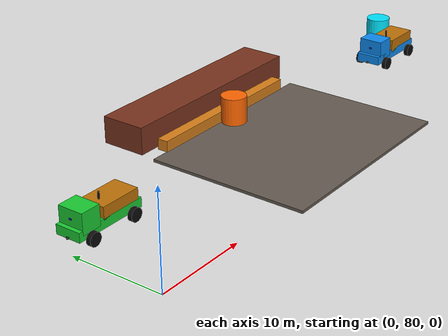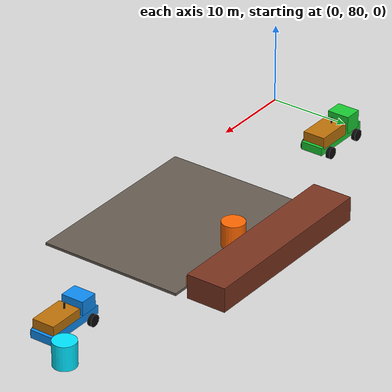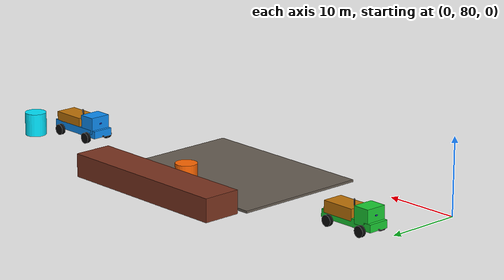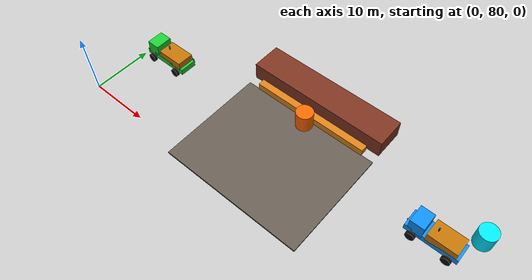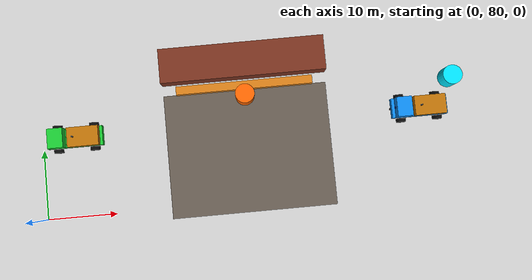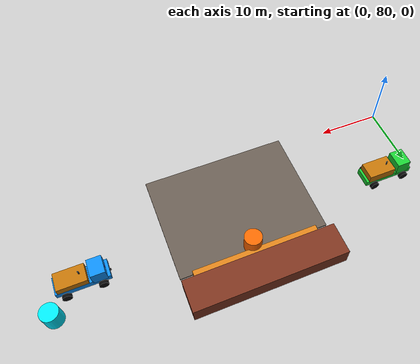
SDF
<sdf version="1.9">
 <world name="sih_mine_world">
  <model name="Dumping_Zone_Pad">
   <static>true</static>
   <pose>30 87.5 -0.15 0 0 0</pose>
   <link name="link">
    <collision name="collision">
     <geometry><box><size>24 18.0 0.3</size></box></geometry>
     <surface><friction><ode><mu>1.0</mu><mu2>0.9</mu2></ode></friction></surface>
    </collision>
    <visual name="visual">
     <geometry><box><size>24 18.0 0.3</size></box></geometry>
     <material><ambient>0.40 0.36 0.32 1</ambient><diffuse>0.40 0.36 0.32 1</diffuse></material>
    </visual>
   </link>
  </model>
  <model name="Dumping_Zone_Stop_Berm">
   <static>true</static>
   <pose>30.0 97.0 0.6 0 0 0</pose>
   <link name="link">
    <collision name="collision">
     <geometry><box><size>20.0 1.2 1.2</size></box></geometry>
     <surface><friction><ode><mu>0.9</mu><mu2>0.9</mu2></ode></friction></surface>
    </collision>
    <visual name="visual">
     <geometry><box><size>20.0 1.2 1.2</size></box></geometry>
     <material><ambient>0.85 0.50 0.10 1</ambient><diffuse>0.85 0.50 0.10 1</diffuse></material>
    </visual>
   </link>
  </model>
  <model name="Dumping_Zone_Stockpile">
   <static>true</static>
   <pose>30.0 100.5 1.5 0 0 0</pose>
   <link name="link">
    <collision name="collision">
     <geometry><box><size>24.0 5.0 3.0</size></box></geometry>
     <surface><friction><ode><mu>0.9</mu><mu2>0.9</mu2></ode></friction></surface>
    </collision>
    <visual name="visual">
     <geometry><box><size>24.0 5.0 3.0</size></box></geometry>
     <material><ambient>0.48 0.20 0.12 1</ambient><diffuse>0.48 0.20 0.12 1</diffuse></material>
    </visual>
   </link>
  </model>
  <model name="Spawn_Marker_02">
   <static>true</static>
   <pose>60 95.5 1.5 0 0 0</pose>
   <link name="link">
    <visual name="visual">
     <geometry><cylinder><radius>1.4</radius><length>3.0</length></cylinder></geometry>
     <material><ambient>0.0 0.9 1.0 1</ambient><diffuse>0.0 0.9 1.0 1</diffuse></material>
    </visual>
   </link>
  </model>
  <model name="Dumping_Zone_Marker">
   <static>true</static>
   <pose>30 95.5 1.5 0 0 0</pose>
   <link name="link">
    <visual name="visual">
     <geometry><cylinder><radius>1.4</radius><length>3.0</length></cylinder></geometry>
     <material><ambient>1.0 0.4 0.0 1</ambient><diffuse>1.0 0.4 0.0 1</diffuse></material>
    </visual>
   </link>
  </model>
  <model name="HEMM_Dumper_02">
   <pose>55 91.5 0 0 0 3.141592653589793</pose>
   <link name="chassis">
    <pose>0 0 1.25 0 0 0</pose>
    <inertial>
     <mass>9000</mass>
     <inertia><ixx>6630</ixx><iyy>48750</iyy><izz>53880</izz><ixy>0</ixy><ixz>0</ixz><iyz>0</iyz></inertia>
    </inertial>
    <collision name="collision">
     <geometry><box><size>8.0 2.8 1.0</size></box></geometry>
     <surface><friction><ode><mu>0.8</mu><mu2>0.05</mu2></ode></friction></surface>
    </collision>
    <visual name="visual">
     <geometry><box><size>8.0 2.8 1.0</size></box></geometry>
     <material><ambient>0.05 0.55 0.95 1</ambient><diffuse>0.05 0.55 0.95 1</diffuse></material>
    </visual>
    <sensor name="imu" type="imu">
     <always_on>1</always_on>
     <update_rate>50</update_rate>
     <visualize>false</visualize>
     <topic>/hemm_02/imu</topic>
    </sensor>
    <sensor name="gps" type="navsat">
     <always_on>1</always_on>
     <update_rate>5</update_rate>
     <topic>/hemm_02/gps</topic>
    </sensor>
   </link>
   <link name="front_body">
    <pose>2.45 0 2.35 0 0 0</pose>
    <inertial>
     <mass>1800</mass>
     <inertia><ixx>1902</ixx><iyy>1452</iyy><izz>1902</izz><ixy>0</ixy><ixz>0</ixz><iyz>0</iyz></inertia>
    </inertial>
    <collision name="collision"><geometry><box><size>2.2 2.8 2.2</size></box></geometry></collision>
    <visual name="visual">
     <geometry><box><size>2.2 2.8 2.2</size></box></geometry>
     <material><ambient>0.05 0.55 0.95 1</ambient><diffuse>0.05 0.55 0.95 1</diffuse></material>
    </visual>
   </link>
   <link name="dump_bed">
    <pose>-1.35 0 2.15 0 0 0</pose>
    <inertial>
     <mass>1400</mass>
     <inertia><ixx>1177</ixx><iyy>2625</iyy><izz>3277</izz><ixy>0</ixy><ixz>0</ixz><iyz>0</iyz></inertia>
    </inertial>
    <collision name="collision"><geometry><box><size>4.5 2.8 1.5</size></box></geometry></collision>
    <visual name="visual">
     <geometry><box><size>4.5 2.8 1.5</size></box></geometry>
     <material><ambient>0.75 0.45 0.03 1</ambient><diffuse>0.75 0.45 0.03 1</diffuse></material>
    </visual>
   </link>
   <link name="sensor_mast">
    <pose>0 0 3.15 0 0 0</pose>
    <inertial>
     <mass>80</mass>
     <inertia><ixx>20</ixx><iyy>20</iyy><izz>20</izz><ixy>0</ixy><ixz>0</ixz><iyz>0</iyz></inertia>
    </inertial>
    <visual name="visual">
     <geometry><cylinder><radius>0.10</radius><length>1.0</length></cylinder></geometry>
     <material><ambient>0.05 0.05 0.05 1</ambient><diffuse>0.05 0.05 0.05 1</diffuse></material>
    </visual>
   </link>
   <link name="left_front_wheel">
    <pose>2.65 1.75 0.70 1.5707963 0 0</pose>
    <inertial>
     <mass>450</mass>
     <inertia><ixx>65</ixx><iyy>65</iyy><izz>110</izz><ixy>0</ixy><ixz>0</ixz><iyz>0</iyz></inertia>
    </inertial>
    <collision name="collision">
     <geometry><cylinder><radius>0.70</radius><length>0.50</length></cylinder></geometry>
     <surface>
      <friction><ode><mu>1.5</mu><mu2>0.05</mu2><fdir1>1 0 0</fdir1></ode></friction>
      <contact><ode><kp>1000000</kp><kd>100</kd><min_depth>0.001</min_depth></ode></contact>
     </surface>
    </collision>
    <visual name="visual">
     <geometry><cylinder><radius>0.70</radius><length>0.50</length></cylinder></geometry>
     <material><ambient>0.04 0.04 0.04 1</ambient><diffuse>0.04 0.04 0.04 1</diffuse></material>
    </visual>
   </link>
   <link name="right_front_wheel">
    <pose>2.65 -1.75 0.70 1.5707963 0 0</pose>
    <inertial>
     <mass>450</mass>
     <inertia><ixx>65</ixx><iyy>65</iyy><izz>110</izz><ixy>0</ixy><ixz>0</ixz><iyz>0</iyz></inertia>
    </inertial>
    <collision name="collision">
     <geometry><cylinder><radius>0.70</radius><length>0.50</length></cylinder></geometry>
     <surface>
      <friction><ode><mu>1.5</mu><mu2>0.05</mu2><fdir1>1 0 0</fdir1></ode></friction>
      <contact><ode><kp>1000000</kp><kd>100</kd><min_depth>0.001</min_depth></ode></contact>
     </surface>
    </collision>
    <visual name="visual">
     <geometry><cylinder><radius>0.70</radius><length>0.50</length></cylinder></geometry>
     <material><ambient>0.04 0.04 0.04 1</ambient><diffuse>0.04 0.04 0.04 1</diffuse></material>
    </visual>
   </link>
   <link name="left_rear_wheel">
    <pose>-2.65 1.75 0.70 1.5707963 0 0</pose>
    <inertial>
     <mass>500</mass>
     <inertia><ixx>72</ixx><iyy>72</iyy><izz>122</izz><ixy>0</ixy><ixz>0</ixz><iyz>0</iyz></inertia>
    </inertial>
    <collision name="collision">
     <geometry><cylinder><radius>0.70</radius><length>0.50</length></cylinder></geometry>
     <surface>
      <friction><ode><mu>1.5</mu><mu2>0.05</mu2><fdir1>1 0 0</fdir1></ode></friction>
      <contact><ode><kp>1000000</kp><kd>100</kd><min_depth>0.001</min_depth></ode></contact>
     </surface>
    </collision>
    <visual name="visual">
     <geometry><cylinder><radius>0.70</radius><length>0.50</length></cylinder></geometry>
     <material><ambient>0.04 0.04 0.04 1</ambient><diffuse>0.04 0.04 0.04 1</diffuse></material>
    </visual>
   </link>
   <link name="right_rear_wheel">
    <pose>-2.65 -1.75 0.70 1.5707963 0 0</pose>
    <inertial>
     <mass>500</mass>
     <inertia><ixx>72</ixx><iyy>72</iyy><izz>122</izz><ixy>0</ixy><ixz>0</ixz><iyz>0</iyz></inertia>
    </inertial>
    <collision name="collision">
     <geometry><cylinder><radius>0.70</radius><length>0.50</length></cylinder></geometry>
     <surface>
      <friction><ode><mu>1.5</mu><mu2>0.05</mu2><fdir1>1 0 0</fdir1></ode></friction>
      <contact><ode><kp>1000000</kp><kd>100</kd><min_depth>0.001</min_depth></ode></contact>
     </surface>
    </collision>
    <visual name="visual">
     <geometry><cylinder><radius>0.70</radius><length>0.50</length></cylinder></geometry>
     <material><ambient>0.04 0.04 0.04 1</ambient><diffuse>0.04 0.04 0.04 1</diffuse></material>
    </visual>
   </link>
   <joint name="front_left_wheel_joint" type="revolute">
    <parent>chassis</parent>
    <child>left_front_wheel</child>
    <axis>
     <xyz expressed_in="__model__">0 1 0</xyz>
     <limit><lower>-1e16</lower><upper>1e16</upper><effort>30000</effort><velocity>20</velocity></limit>
     <dynamics><damping>50</damping><friction>1.0</friction></dynamics>
    </axis>
   </joint>
   <joint name="front_right_wheel_joint" type="revolute">
    <parent>chassis</parent>
    <child>right_front_wheel</child>
    <axis>
     <xyz expressed_in="__model__">0 1 0</xyz>
     <limit><lower>-1e16</lower><upper>1e16</upper><effort>30000</effort><velocity>20</velocity></limit>
     <dynamics><damping>50</damping><friction>1.0</friction></dynamics>
    </axis>
   </joint>
   <joint name="rear_left_wheel_joint" type="revolute">
    <parent>chassis</parent>
    <child>left_rear_wheel</child>
    <axis>
     <xyz expressed_in="__model__">0 1 0</xyz>
     <limit><lower>-1e16</lower><upper>1e16</upper><effort>30000</effort><velocity>20</velocity></limit>
     <dynamics><damping>50</damping><friction>1.0</friction></dynamics>
    </axis>
   </joint>
   <joint name="rear_right_wheel_joint" type="revolute">
    <parent>chassis</parent>
    <child>right_rear_wheel</child>
    <axis>
     <xyz expressed_in="__model__">0 1 0</xyz>
     <limit><lower>-1e16</lower><upper>1e16</upper><effort>30000</effort><velocity>20</velocity></limit>
     <dynamics><damping>50</damping><friction>1.0</friction></dynamics>
    </axis>
   </joint>
   <joint name="front_body_joint" type="fixed"><parent>chassis</parent><child>front_body</child></joint>
   <joint name="dump_bed_joint" type="fixed"><parent>chassis</parent><child>dump_bed</child></joint>
   <joint name="sensor_mast_joint" type="fixed"><parent>chassis</parent><child>sensor_mast</child></joint>
   <plugin filename="gz-sim-diff-drive-system" name="gz::sim::systems::DiffDrive">
    <left_joint>front_left_wheel_joint</left_joint>
    <left_joint>rear_left_wheel_joint</left_joint>
    <right_joint>front_right_wheel_joint</right_joint>
    <right_joint>rear_right_wheel_joint</right_joint>
    <wheel_separation>3.50</wheel_separation>
    <wheel_radius>0.70</wheel_radius>
    <topic>/hemm_02/cmd_vel</topic>
    <odom_topic>/hemm_02/odom</odom_topic>
    <frame_id>hemm_02/odom</frame_id>
    <child_frame_id>hemm_02/base_link</child_frame_id>
    <odom_publish_frequency>30</odom_publish_frequency>
    <max_linear_acceleration>2.0</max_linear_acceleration>
    <min_linear_acceleration>-2.0</min_linear_acceleration>
    <max_angular_acceleration>1.5</max_angular_acceleration>
    <min_angular_acceleration>-1.5</min_angular_acceleration>
   </plugin>
   <link name="lidar_link">
    <pose>4.05 0 0.85 0 0 0</pose>
    <inertial>
     <mass>1.0</mass>
     <inertia><ixx>0.001</ixx><iyy>0.001</iyy><izz>0.001</izz><ixy>0</ixy><ixz>0</ixz><iyz>0</iyz></inertia>
    </inertial>
    <visual name="visual">
     <geometry><cylinder><radius>0.15</radius><length>0.15</length></cylinder></geometry>
     <material><ambient>0.1 0.1 0.1 1</ambient><diffuse>0.1 0.1 0.1 1</diffuse></material>
    </visual>
    <sensor name="lidar" type="gpu_lidar">
     <topic>/hemm_02/scan</topic>
     <update_rate>10</update_rate>
     <ray>
      <scan>
       <horizontal>
        <samples>360</samples>
        <resolution>1</resolution>
        <min_angle>-3.14159265</min_angle>
        <max_angle>3.14159265</max_angle>
       </horizontal>
      </scan>
      <range><min>0.1</min><max>50.0</max><resolution>0.05</resolution></range>
     </ray>
     <always_on>true</always_on>
     <visualize>false</visualize>
    </sensor>
   </link>
   <joint name="lidar_joint" type="fixed"><parent>chassis</parent><child>lidar_link</child></joint>
   <link name="camera_link">
    <pose>3.55 0 2.5 0 0 0</pose>
    <inertial>
     <mass>0.5</mass>
     <inertia><ixx>0.0005</ixx><iyy>0.0005</iyy><izz>0.0005</izz><ixy>0</ixy><ixz>0</ixz><iyz>0</iyz></inertia>
    </inertial>
    <visual name="visual">
     <geometry><box><size>0.15 0.30 0.15</size></box></geometry>
     <material><ambient>0.2 0.2 0.8 1</ambient><diffuse>0.2 0.2 0.8 1</diffuse></material>
    </visual>
    <sensor name="camera" type="camera">
     <topic>/hemm_02/camera/image_raw</topic>
     <update_rate>15</update_rate>
     <camera>
      <horizontal_fov>1.570796</horizontal_fov>
      <image><width>640</width><height>480</height><format>R8G8B8</format></image>
      <clip><near>0.2</near><far>100.0</far></clip>
     </camera>
     <always_on>1</always_on>
     <visualize>false</visualize>
    </sensor>
    <sensor name="depth_camera" type="depth_camera">
     <topic>/hemm_02/depth/image_raw</topic>
     <update_rate>10</update_rate>
     <camera>
      <horizontal_fov>1.396263</horizontal_fov>
      <image><width>320</width><height>240</height><format>R_FLOAT32</format></image>
      <clip><near>0.5</near><far>50.0</far></clip>
     </camera>
     <always_on>1</always_on>
     <visualize>false</visualize>
    </sensor>
   </link>
   <joint name="camera_joint" type="fixed"><parent>chassis</parent><child>camera_link</child></joint>
  </model>
  <model name="HEMM_Dumper_03">
   <pose>5 91.5 0 0 0 3.141592653589793</pose>
   <link name="chassis">
    <pose>0 0 1.25 0 0 0</pose>
    <inertial>
     <mass>9000</mass>
     <inertia><ixx>6630</ixx><iyy>48750</iyy><izz>53880</izz><ixy>0</ixy><ixz>0</ixz><iyz>0</iyz></inertia>
    </inertial>
    <collision name="collision">
     <geometry><box><size>8.0 2.8 1.0</size></box></geometry>
     <surface><friction><ode><mu>0.8</mu><mu2>0.05</mu2></ode></friction></surface>
    </collision>
    <visual name="visual">
     <geometry><box><size>8.0 2.8 1.0</size></box></geometry>
     <material><ambient>0.10 0.80 0.20 1</ambient><diffuse>0.10 0.80 0.20 1</diffuse></material>
    </visual>
    <sensor name="imu" type="imu">
     <always_on>1</always_on>
     <update_rate>50</update_rate>
     <visualize>false</visualize>
     <topic>/hemm_03/imu</topic>
    </sensor>
    <sensor name="gps" type="navsat">
     <always_on>1</always_on>
     <update_rate>5</update_rate>
     <topic>/hemm_03/gps</topic>
    </sensor>
   </link>
   <link name="front_body">
    <pose>2.45 0 2.35 0 0 0</pose>
    <inertial>
     <mass>1800</mass>
     <inertia><ixx>1902</ixx><iyy>1452</iyy><izz>1902</izz><ixy>0</ixy><ixz>0</ixz><iyz>0</iyz></inertia>
    </inertial>
    <collision name="collision"><geometry><box><size>2.2 2.8 2.2</size></box></geometry></collision>
    <visual name="visual">
     <geometry><box><size>2.2 2.8 2.2</size></box></geometry>
     <material><ambient>0.10 0.80 0.20 1</ambient><diffuse>0.10 0.80 0.20 1</diffuse></material>
    </visual>
   </link>
   <link name="dump_bed">
    <pose>-1.35 0 2.15 0 0 0</pose>
    <inertial>
     <mass>1400</mass>
     <inertia><ixx>1177</ixx><iyy>2625</iyy><izz>3277</izz><ixy>0</ixy><ixz>0</ixz><iyz>0</iyz></inertia>
    </inertial>
    <collision name="collision"><geometry><box><size>4.5 2.8 1.5</size></box></geometry></collision>
    <visual name="visual">
     <geometry><box><size>4.5 2.8 1.5</size></box></geometry>
     <material><ambient>0.75 0.45 0.03 1</ambient><diffuse>0.75 0.45 0.03 1</diffuse></material>
    </visual>
   </link>
   <link name="sensor_mast">
    <pose>0 0 3.15 0 0 0</pose>
    <inertial>
     <mass>80</mass>
     <inertia><ixx>20</ixx><iyy>20</iyy><izz>20</izz><ixy>0</ixy><ixz>0</ixz><iyz>0</iyz></inertia>
    </inertial>
    <visual name="visual">
     <geometry><cylinder><radius>0.10</radius><length>1.0</length></cylinder></geometry>
     <material><ambient>0.05 0.05 0.05 1</ambient><diffuse>0.05 0.05 0.05 1</diffuse></material>
    </visual>
   </link>
   <link name="left_front_wheel">
    <pose>2.65 1.75 0.70 1.5707963 0 0</pose>
    <inertial>
     <mass>450</mass>
     <inertia><ixx>65</ixx><iyy>65</iyy><izz>110</izz><ixy>0</ixy><ixz>0</ixz><iyz>0</iyz></inertia>
    </inertial>
    <collision name="collision">
     <geometry><cylinder><radius>0.70</radius><length>0.50</length></cylinder></geometry>
     <surface>
      <friction><ode><mu>1.5</mu><mu2>0.05</mu2><fdir1>1 0 0</fdir1></ode></friction>
      <contact><ode><kp>1000000</kp><kd>100</kd><min_depth>0.001</min_depth></ode></contact>
     </surface>
    </collision>
    <visual name="visual">
     <geometry><cylinder><radius>0.70</radius><length>0.50</length></cylinder></geometry>
     <material><ambient>0.04 0.04 0.04 1</ambient><diffuse>0.04 0.04 0.04 1</diffuse></material>
    </visual>
   </link>
   <link name="right_front_wheel">
    <pose>2.65 -1.75 0.70 1.5707963 0 0</pose>
    <inertial>
     <mass>450</mass>
     <inertia><ixx>65</ixx><iyy>65</iyy><izz>110</izz><ixy>0</ixy><ixz>0</ixz><iyz>0</iyz></inertia>
    </inertial>
    <collision name="collision">
     <geometry><cylinder><radius>0.70</radius><length>0.50</length></cylinder></geometry>
     <surface>
      <friction><ode><mu>1.5</mu><mu2>0.05</mu2><fdir1>1 0 0</fdir1></ode></friction>
      <contact><ode><kp>1000000</kp><kd>100</kd><min_depth>0.001</min_depth></ode></contact>
     </surface>
    </collision>
    <visual name="visual">
     <geometry><cylinder><radius>0.70</radius><length>0.50</length></cylinder></geometry>
     <material><ambient>0.04 0.04 0.04 1</ambient><diffuse>0.04 0.04 0.04 1</diffuse></material>
    </visual>
   </link>
   <link name="left_rear_wheel">
    <pose>-2.65 1.75 0.70 1.5707963 0 0</pose>
    <inertial>
     <mass>500</mass>
     <inertia><ixx>72</ixx><iyy>72</iyy><izz>122</izz><ixy>0</ixy><ixz>0</ixz><iyz>0</iyz></inertia>
    </inertial>
    <collision name="collision">
     <geometry><cylinder><radius>0.70</radius><length>0.50</length></cylinder></geometry>
     <surface>
      <friction><ode><mu>1.5</mu><mu2>0.05</mu2><fdir1>1 0 0</fdir1></ode></friction>
      <contact><ode><kp>1000000</kp><kd>100</kd><min_depth>0.001</min_depth></ode></contact>
     </surface>
    </collision>
    <visual name="visual">
     <geometry><cylinder><radius>0.70</radius><length>0.50</length></cylinder></geometry>
     <material><ambient>0.04 0.04 0.04 1</ambient><diffuse>0.04 0.04 0.04 1</diffuse></material>
    </visual>
   </link>
   <link name="right_rear_wheel">
    <pose>-2.65 -1.75 0.70 1.5707963 0 0</pose>
    <inertial>
     <mass>500</mass>
     <inertia><ixx>72</ixx><iyy>72</iyy><izz>122</izz><ixy>0</ixy><ixz>0</ixz><iyz>0</iyz></inertia>
    </inertial>
    <collision name="collision">
     <geometry><cylinder><radius>0.70</radius><length>0.50</length></cylinder></geometry>
     <surface>
      <friction><ode><mu>1.5</mu><mu2>0.05</mu2><fdir1>1 0 0</fdir1></ode></friction>
      <contact><ode><kp>1000000</kp><kd>100</kd><min_depth>0.001</min_depth></ode></contact>
     </surface>
    </collision>
    <visual name="visual">
     <geometry><cylinder><radius>0.70</radius><length>0.50</length></cylinder></geometry>
     <material><ambient>0.04 0.04 0.04 1</ambient><diffuse>0.04 0.04 0.04 1</diffuse></material>
    </visual>
   </link>
   <joint name="front_left_wheel_joint" type="revolute">
    <parent>chassis</parent>
    <child>left_front_wheel</child>
    <axis>
     <xyz expressed_in="__model__">0 1 0</xyz>
     <limit><lower>-1e16</lower><upper>1e16</upper><effort>30000</effort><velocity>20</velocity></limit>
     <dynamics><damping>50</damping><friction>1.0</friction></dynamics>
    </axis>
   </joint>
   <joint name="front_right_wheel_joint" type="revolute">
    <parent>chassis</parent>
    <child>right_front_wheel</child>
    <axis>
     <xyz expressed_in="__model__">0 1 0</xyz>
     <limit><lower>-1e16</lower><upper>1e16</upper><effort>30000</effort><velocity>20</velocity></limit>
     <dynamics><damping>50</damping><friction>1.0</friction></dynamics>
    </axis>
   </joint>
   <joint name="rear_left_wheel_joint" type="revolute">
    <parent>chassis</parent>
    <child>left_rear_wheel</child>
    <axis>
     <xyz expressed_in="__model__">0 1 0</xyz>
     <limit><lower>-1e16</lower><upper>1e16</upper><effort>30000</effort><velocity>20</velocity></limit>
     <dynamics><damping>50</damping><friction>1.0</friction></dynamics>
    </axis>
   </joint>
   <joint name="rear_right_wheel_joint" type="revolute">
    <parent>chassis</parent>
    <child>right_rear_wheel</child>
    <axis>
     <xyz expressed_in="__model__">0 1 0</xyz>
     <limit><lower>-1e16</lower><upper>1e16</upper><effort>30000</effort><velocity>20</velocity></limit>
     <dynamics><damping>50</damping><friction>1.0</friction></dynamics>
    </axis>
   </joint>
   <joint name="front_body_joint" type="fixed"><parent>chassis</parent><child>front_body</child></joint>
   <joint name="dump_bed_joint" type="fixed"><parent>chassis</parent><child>dump_bed</child></joint>
   <joint name="sensor_mast_joint" type="fixed"><parent>chassis</parent><child>sensor_mast</child></joint>
   <plugin filename="gz-sim-diff-drive-system" name="gz::sim::systems::DiffDrive">
    <left_joint>front_left_wheel_joint</left_joint>
    <left_joint>rear_left_wheel_joint</left_joint>
    <right_joint>front_right_wheel_joint</right_joint>
    <right_joint>rear_right_wheel_joint</right_joint>
    <wheel_separation>3.50</wheel_separation>
    <wheel_radius>0.70</wheel_radius>
    <topic>/hemm_03/cmd_vel</topic>
    <odom_topic>/hemm_03/odom</odom_topic>
    <frame_id>hemm_03/odom</frame_id>
    <child_frame_id>hemm_03/base_link</child_frame_id>
    <odom_publish_frequency>30</odom_publish_frequency>
    <max_linear_acceleration>2.0</max_linear_acceleration>
    <min_linear_acceleration>-2.0</min_linear_acceleration>
    <max_angular_acceleration>1.5</max_angular_acceleration>
    <min_angular_acceleration>-1.5</min_angular_acceleration>
   </plugin>
   <link name="lidar_link">
    <pose>4.05 0 0.85 0 0 0</pose>
    <inertial>
     <mass>1.0</mass>
     <inertia><ixx>0.001</ixx><iyy>0.001</iyy><izz>0.001</izz><ixy>0</ixy><ixz>0</ixz><iyz>0</iyz></inertia>
    </inertial>
    <visual name="visual">
     <geometry><cylinder><radius>0.15</radius><length>0.15</length></cylinder></geometry>
     <material><ambient>0.1 0.1 0.1 1</ambient><diffuse>0.1 0.1 0.1 1</diffuse></material>
    </visual>
    <sensor name="lidar" type="gpu_lidar">
     <topic>/hemm_03/scan</topic>
     <update_rate>10</update_rate>
     <ray>
      <scan>
       <horizontal>
        <samples>360</samples>
        <resolution>1</resolution>
        <min_angle>-3.14159265</min_angle>
        <max_angle>3.14159265</max_angle>
       </horizontal>
      </scan>
      <range><min>0.1</min><max>50.0</max><resolution>0.05</resolution></range>
     </ray>
     <always_on>true</always_on>
     <visualize>false</visualize>
    </sensor>
   </link>
   <joint name="lidar_joint" type="fixed"><parent>chassis</parent><child>lidar_link</child></joint>
   <link name="camera_link">
    <pose>3.55 0 2.5 0 0 0</pose>
    <inertial>
     <mass>0.5</mass>
     <inertia><ixx>0.0005</ixx><iyy>0.0005</iyy><izz>0.0005</izz><ixy>0</ixy><ixz>0</ixz><iyz>0</iyz></inertia>
    </inertial>
    <visual name="visual">
     <geometry><box><size>0.15 0.30 0.15</size></box></geometry>
     <material><ambient>0.2 0.2 0.8 1</ambient><diffuse>0.2 0.2 0.8 1</diffuse></material>
    </visual>
    <sensor name="camera" type="camera">
     <topic>/hemm_03/camera/image_raw</topic>
     <update_rate>15</update_rate>
     <camera>
      <horizontal_fov>1.570796</horizontal_fov>
      <image><width>640</width><height>480</height><format>R8G8B8</format></image>
      <clip><near>0.2</near><far>100.0</far></clip>
     </camera>
     <always_on>1</always_on>
     <visualize>false</visualize>
    </sensor>
    <sensor name="depth_camera" type="depth_camera">
     <topic>/hemm_03/depth/image_raw</topic>
     <update_rate>10</update_rate>
     <camera>
      <horizontal_fov>1.396263</horizontal_fov>
      <image><width>320</width><height>240</height><format>R_FLOAT32</format></image>
      <clip><near>0.5</near><far>50.0</far></clip>
     </camera>
     <always_on>1</always_on>
     <visualize>false</visualize>
    </sensor>
   </link>
   <joint name="camera_joint" type="fixed"><parent>chassis</parent><child>camera_link</child></joint>
  </model>
 </world>
</sdf>
